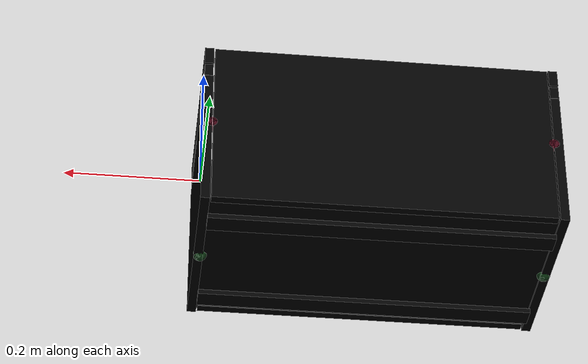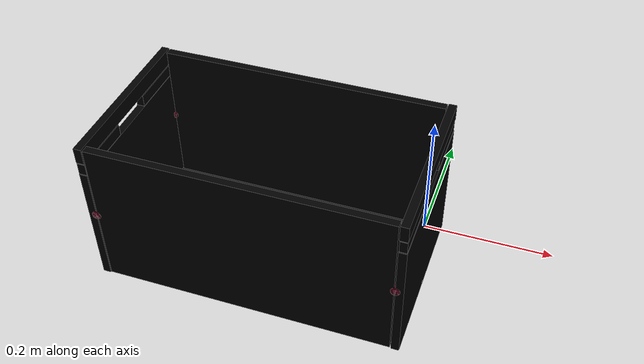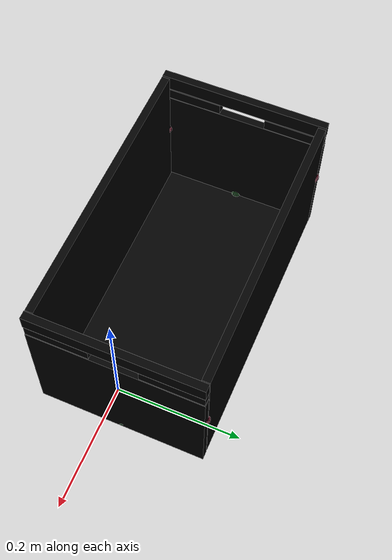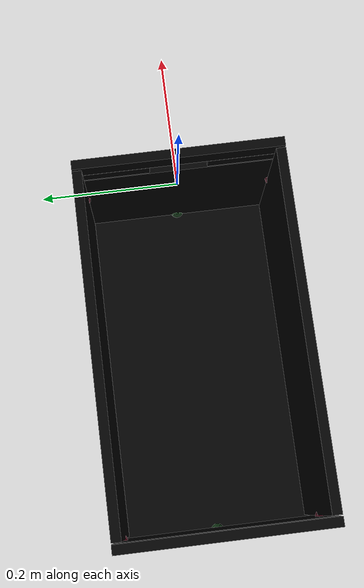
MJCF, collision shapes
<mujoco model="ikea_box">
  <custom>
    <numeric data="0.546077 0.234584 0.006332 0.707105 -0.00609 0.707057 0.006091" name="0_part0_initpos" />
    <numeric data="0.056708 0.243404 0.007289 0.012519 0.0 0.0 -0.999922" name="4_part4_initpos" />
    <numeric data="-0.445141 0.216783 0.006384 0.70606 0.037054 -0.706211 0.037046" name="3_part3_initpos" />
    <numeric data="-0.244854 -0.142557 0.006949 -0.025276 -0.025276 0.706655 0.706655" name="2_part2_initpos" />
    <numeric data="0.384367 -0.146051 0.007052 0.706879 -0.706879 0.017939 -0.017939" name="1_part1_initpos" />
  </custom>
  <asset>
    <mesh file="meshes/box_ivar_0666/0.stl" name="part0" scale="0.0005 0.0005 0.0005" />
    <mesh file="meshes/box_ivar_0666/4.stl" name="part4" scale="0.0005 0.0005 0.0005" />
    <mesh file="meshes/box_ivar_0666/3.stl" name="part3" scale="0.0005 0.0005 0.0005" />
    <mesh file="meshes/box_ivar_0666/2.stl" name="part2" scale="0.0005 0.0005 0.0005" />
    <mesh file="meshes/box_ivar_0666/1.stl" name="part1" scale="0.0005 0.0005 0.0005" />
  </asset>
  <equality>
    <weld active="false" body1="0_part0" body2="1_part1" solimp="1 1 0.5" solref="0.01 0.3" />
    <weld active="false" body1="0_part0" body2="2_part2" solimp="1 1 0.5" solref="0.01 0.3" />
    <weld active="false" body1="3_part3" body2="1_part1" solimp="1 1 0.5" solref="0.01 0.3" />
    <weld active="false" body1="3_part3" body2="2_part2" solimp="1 1 0.5" solref="0.01 0.3" />
    <weld active="false" body1="0_part0" body2="4_part4" solimp="1 1 0.5" solref="0.01 0.3" />
    <weld active="false" body1="3_part3" body2="4_part4" solimp="1 1 0.5" solref="0.01 0.3" />
    <weld active="false" body1="0_part0" body2="4_part4" solimp="1 1 0.5" solref="0.01 0.3" />
    <weld active="false" body1="3_part3" body2="4_part4" solimp="1 1 0.5" solref="0.01 0.3" />
    <weld active="false" body1="0_part0" body2="2_part2" solimp="1 1 0.5" solref="0.01 0.3" />
    <weld active="false" body1="0_part0" body2="1_part1" solimp="1 1 0.5" solref="0.01 0.3" />
    <weld active="false" body1="3_part3" body2="2_part2" solimp="1 1 0.5" solref="0.01 0.3" />
    <weld active="false" body1="3_part3" body2="1_part1" solimp="1 1 0.5" solref="0.01 0.3" />
  </equality>
  <worldbody>
    <body name="0_part0" pos="0.0 1e-10 0.0" quat="1 0 0 0">
      <geom conaffinity="0" contype="0" density="0" mesh="part0" name="0_part0_mesh" pos="0.0 0.0 0.0" rgba="0.82 0.71 0.55 1" type="mesh" />
      <site name="0_part0_horizontal_radius_site" pos="0.0 1e-10 0.0" quat="1 0 0 0" rgba="0 0 0 0" size="0.0005" />
      <site name="0_part0_top_site" pos="0.0 1e-10 0.13492582705" quat="1 0 0 0" rgba="0 0 0 0" size="0.0005" />
      <site name="0_part0_bottom_site" pos="0.0 1e-10 -0.13492582705" quat="1 0 0 0" rgba="0 0 0 0" size="0.0005" />
      <site name="0_part0_corner_site8" pos="-0.00635 0.1461402285 0.13492582705" quat="1 0 0 0" rgba="0 0 0 0" size="0.01" />
      <site name="0_part0_corner_site7" pos="0.00635 0.1461402285 0.13492582705" quat="1 0 0 0" rgba="0 0 0 0" size="0.01" />
      <site name="0_part0_corner_site6" pos="0.00635 -0.14614022825 0.13492582705" quat="1 0 0 0" rgba="0 0 0 0" size="0.01" />
      <site name="0_part0_corner_site5" pos="-0.00635 -0.14614022825 0.13492582705" quat="1 0 0 0" rgba="0 0 0 0" size="0.01" />
      <site name="0_part0_corner_site4" pos="-0.00635 0.1461402285 -0.13492582705" quat="1 0 0 0" rgba="0 0 0 0" size="0.01" />
      <site name="0_part0_corner_site3" pos="0.00635 0.1461402285 -0.13492582705" quat="1 0 0 0" rgba="0 0 0 0" size="0.01" />
      <site name="0_part0_corner_site2" pos="0.00635 -0.14614022825 -0.13492582705" quat="1 0 0 0" rgba="0 0 0 0" size="0.01" />
      <site name="0_part0_corner_site1" pos="-0.00635 -0.14614022825 -0.13492582705" quat="1 0 0 0" rgba="0 0 0 0" size="0.01" />
      <site name="short-long,0,conn_site4" pos="-0.006900000000000001 -0.14 0.0" quat="0.7071067 0 0.7071068 0" rgba="0.9019 0.0980 0.2941 0.3" size="0.01" />
      <site name="short-long,0,conn_site3" pos="-0.006900000000000001 0.14 0.0" quat="0.7071067 0 0.7071068 0" rgba="0.9019 0.0980 0.2941 0.3" size="0.01" />
      <site name="short-bottom,0,conn_site2" pos="-0.0030499999999999998 1e-08 -0.13" quat="0.7071067 0 0.7071068 0" rgba="0.2352 0.7058 0.2941 0.3" size="0.01" />
      <geom density="50" name="noviz_collision_0_part0_0" pos="-0.00031579000000000004 2e-08 -0.025500000000000002" quat="1 0 0 0" rgba="0 0 0 0" size="0.0066657700000000005 0.14614025 0.10875" solref="0.001 1" type="box" />
      <geom density="50" name="noviz_collision_0_part0_1" pos="-0.00031579000000000004 2e-08 0.1205" quat="1 0 0 0" rgba="0 0 0 0" size="0.0066657700000000005 0.14614025 0.01375" solref="0.001 1" type="box" />
      <geom density="50" name="noviz_collision_0_part0_2" pos="-0.00031579000000000004 0.093 0.0945" quat="1 0 0 0" rgba="0 0 0 0" size="0.00603421 0.0525 0.01" solref="0.001 1" type="box" />
      <geom density="50" name="noviz_collision_0_part0_3" pos="-0.00031579000000000004 -0.093 0.0945" quat="1 0 0 0" rgba="0 0 0 0" size="0.00603421 0.0525 0.01" solref="0.001 1" type="box" />
    </body>
    <body name="4_part4" pos="-0.25387612340000004 2.265e-08 -0.13619582725" quat="1 0 0 0">
      <geom conaffinity="0" contype="0" density="0" mesh="part4" name="4_part4_mesh" pos="0.0 0.0 0.0" rgba="0.82 0.71 0.55 1" type="mesh" />
      <site name="4_part4_horizontal_radius_site" pos="0.0 0.0 0.0" quat="1 0 0 0" rgba="0 0 0 0" size="0.0005" />
      <site name="4_part4_top_site" pos="0.0 0.0 0.0076200001000000005" quat="1 0 0 0" rgba="0 0 0 0" size="0.0005" />
      <site name="4_part4_bottom_site" pos="0.0 0.0 -0.0076200001000000005" quat="1 0 0 0" rgba="0 0 0 0" size="0.0005" />
      <site name="4_part4_corner_site8" pos="-0.25387612345 0.1397902069 0.0076200001000000005" quat="1 0 0 0" rgba="0 0 0 0" size="0.01" />
      <site name="4_part4_corner_site7" pos="0.25387612345 0.1397902069 0.0076200001000000005" quat="1 0 0 0" rgba="0 0 0 0" size="0.01" />
      <site name="4_part4_corner_site6" pos="0.25387612345 -0.1397902069 0.0076200001000000005" quat="1 0 0 0" rgba="0 0 0 0" size="0.01" />
      <site name="4_part4_corner_site5" pos="-0.25387612345 -0.1397902069 0.0076200001000000005" quat="1 0 0 0" rgba="0 0 0 0" size="0.01" />
      <site name="4_part4_corner_site4" pos="-0.25387612345 0.1397902069 -0.0076200001000000005" quat="1 0 0 0" rgba="0 0 0 0" size="0.01" />
      <site name="4_part4_corner_site3" pos="0.25387612345 0.1397902069 -0.0076200001000000005" quat="1 0 0 0" rgba="0 0 0 0" size="0.01" />
      <site name="4_part4_corner_site2" pos="0.25387612345 -0.1397902069 -0.0076200001000000005" quat="1 0 0 0" rgba="0 0 0 0" size="0.01" />
      <site name="4_part4_corner_site1" pos="-0.25387612345 -0.1397902069 -0.0076200001000000005" quat="1 0 0 0" rgba="0 0 0 0" size="0.01" />
      <site name="bottom-short,0,conn_site2" pos="0.25082615 -1e-08 0.00619583" quat="0.7071067 0 0.7071068 0" rgba="0.2352 0.7058 0.2941 0.3" size="0.01" />
      <site name="bottom-short,0,conn_site1" pos="-0.25152385 -1e-08 0.00619583" quat="0 0.7071068 0 -0.7071067" rgba="0.2352 0.7058 0.2941 0.3" size="0.01" />
      <geom density="50" name="noviz_collision_4_part4_0" pos="0.0 -5e-09 0.0064458300000000005" quat="1 0 0 0" rgba="0 0 0 0" size="0.25387615 0.1397902 0.00125" solref="0.001 1" type="box" />
      <geom density="50" name="noviz_collision_4_part4_1" pos="0.0 0.09644995 -0.00355417" quat="1 0 0 0" rgba="0 0 0 0" size="0.2475 0.015 0.00375" solref="0.001 1" type="box" />
      <geom density="50" name="noviz_collision_4_part4_2" pos="0.0 -0.09690000000000001 -0.00355417" quat="1 0 0 0" rgba="0 0 0 0" size="0.2475 0.015 0.00375" solref="0.001 1" type="box" />
    </body>
    <body name="3_part3" pos="-0.5077522468000001 1e-10 0.0" quat="1 0 0 0">
      <geom conaffinity="0" contype="0" density="0" mesh="part3" name="3_part3_mesh" pos="0.0 0.0 0.0" rgba="0.82 0.71 0.55 1" type="mesh" />
      <site name="3_part3_horizontal_radius_site" pos="0.0 1e-10 0.0" quat="1 0 0 0" rgba="0 0 0 0" size="0.0005" />
      <site name="3_part3_top_site" pos="0.0 1e-10 0.13492582705" quat="1 0 0 0" rgba="0 0 0 0" size="0.0005" />
      <site name="3_part3_bottom_site" pos="0.0 1e-10 -0.13492582705" quat="1 0 0 0" rgba="0 0 0 0" size="0.0005" />
      <site name="3_part3_corner_site8" pos="-0.0063500061 0.1461402285 0.13492582705" quat="1 0 0 0" rgba="0 0 0 0" size="0.01" />
      <site name="3_part3_corner_site7" pos="0.0063500061 0.1461402285 0.13492582705" quat="1 0 0 0" rgba="0 0 0 0" size="0.01" />
      <site name="3_part3_corner_site6" pos="0.0063500061 -0.14614022825 0.13492582705" quat="1 0 0 0" rgba="0 0 0 0" size="0.01" />
      <site name="3_part3_corner_site5" pos="-0.0063500061 -0.14614022825 0.13492582705" quat="1 0 0 0" rgba="0 0 0 0" size="0.01" />
      <site name="3_part3_corner_site4" pos="-0.0063500061 0.1461402285 -0.13492582705" quat="1 0 0 0" rgba="0 0 0 0" size="0.01" />
      <site name="3_part3_corner_site3" pos="0.0063500061 0.1461402285 -0.13492582705" quat="1 0 0 0" rgba="0 0 0 0" size="0.01" />
      <site name="3_part3_corner_site2" pos="0.0063500061 -0.14614022825 -0.13492582705" quat="1 0 0 0" rgba="0 0 0 0" size="0.01" />
      <site name="3_part3_corner_site1" pos="-0.0063500061 -0.14614022825 -0.13492582705" quat="1 0 0 0" rgba="0 0 0 0" size="0.01" />
      <site name="short-long,0,conn_site2" pos="0.0067522599999999995 -0.14 0.0" quat="0 0.7071068 0 -0.7071067" rgba="0.9019 0.0980 0.2941 0.3" size="0.01" />
      <site name="short-long,0,conn_site1" pos="0.0067522599999999995 0.14 0.0" quat="0 0.7071068 0 -0.7071067" rgba="0.9019 0.0980 0.2941 0.3" size="0.01" />
      <site name="short-bottom,0,conn_site1" pos="0.002352265 1e-08 -0.13" quat="0 0.7071068 0 -0.7071067" rgba="0.2352 0.7058 0.2941 0.3" size="0.01" />
      <geom density="50" name="noviz_collision_3_part3_0" pos="0.000315795 2e-08 -0.025500000000000002" quat="1 0 0 0" rgba="0 0 0 0" size="0.0066657700000000005 0.14614025 0.10875" solref="0.001 1" type="box" />
      <geom density="50" name="noviz_collision_3_part3_1" pos="0.000315795 2e-08 0.1205" quat="1 0 0 0" rgba="0 0 0 0" size="0.0066657700000000005 0.14614025 0.01375" solref="0.001 1" type="box" />
      <geom density="50" name="noviz_collision_3_part3_2" pos="0.000315795 0.093 0.0945" quat="1 0 0 0" rgba="0 0 0 0" size="0.0066657700000000005 0.0525 0.01" solref="0.001 1" type="box" />
      <geom density="50" name="noviz_collision_3_part3_3" pos="0.000315795 -0.093 0.0945" quat="1 0 0 0" rgba="0 0 0 0" size="0.0066657700000000005 0.0525 0.01" solref="0.001 1" type="box" />
    </body>
    <body name="2_part2" pos="-0.25387612515 0.13979021084999999 0.0" quat="1 0 0 0">
      <geom conaffinity="0" contype="0" density="0" mesh="part2" name="2_part2_mesh" pos="0.0 0.0 0.0" rgba="0.82 0.71 0.55 1" type="mesh" />
      <site name="2_part2_horizontal_radius_site" pos="0.0 1e-10 0.0" quat="1 0 0 0" rgba="0 0 0 0" size="0.0005" />
      <site name="2_part2_top_site" pos="0.0 1e-10 0.13492582705" quat="1 0 0 0" rgba="0 0 0 0" size="0.0005" />
      <site name="2_part2_bottom_site" pos="0.0 1e-10 -0.13492582705" quat="1 0 0 0" rgba="0 0 0 0" size="0.0005" />
      <site name="2_part2_corner_site8" pos="-0.25387612915 0.00635001775 0.13492582705" quat="1 0 0 0" rgba="0 0 0 0" size="0.01" />
      <site name="2_part2_corner_site7" pos="0.25387612915 0.00635001775 0.13492582705" quat="1 0 0 0" rgba="0 0 0 0" size="0.01" />
      <site name="2_part2_corner_site6" pos="0.25387612915 -0.00635001755 0.13492582705" quat="1 0 0 0" rgba="0 0 0 0" size="0.01" />
      <site name="2_part2_corner_site5" pos="-0.25387612915 -0.00635001755 0.13492582705" quat="1 0 0 0" rgba="0 0 0 0" size="0.01" />
      <site name="2_part2_corner_site4" pos="-0.25387612915 0.00635001775 -0.13492582705" quat="1 0 0 0" rgba="0 0 0 0" size="0.01" />
      <site name="2_part2_corner_site3" pos="0.25387612915 0.00635001775 -0.13492582705" quat="1 0 0 0" rgba="0 0 0 0" size="0.01" />
      <site name="2_part2_corner_site2" pos="0.25387612915 -0.00635001755 -0.13492582705" quat="1 0 0 0" rgba="0 0 0 0" size="0.01" />
      <site name="2_part2_corner_site1" pos="-0.25387612915 -0.00635001755 -0.13492582705" quat="1 0 0 0" rgba="0 0 0 0" size="0.01" />
      <site name="long-short,0,conn_site3" pos="0.24697615 0.000209795 0.0" quat="0.7071067 0 0.7071068 0" rgba="0.9019 0.0980 0.2941 0.3" size="0.01" />
      <site name="long-short,0,conn_site1" pos="-0.24712385 0.000209795 0.0" quat="0 0.7071068 0 -0.7071067" rgba="0.9019 0.0980 0.2941 0.3" size="0.01" />
      <geom density="50" name="noviz_collision_2_part2_0" pos="0.0 -0.000314515 0.0005" quat="1 0 0 0" rgba="0 0 0 0" size="0.245 0.006664565 0.1325" solref="0.001 1" type="box" />
    </body>
    <body name="1_part1" pos="-0.25387612515 -0.13979020855 0.0" quat="1 0 0 0">
      <geom conaffinity="0" contype="0" density="0" mesh="part1" name="1_part1_mesh" pos="0.0 0.0 0.0" rgba="0.82 0.71 0.55 1" type="mesh" />
      <site name="1_part1_horizontal_radius_site" pos="0.0 0.0 0.0" quat="1 0 0 0" rgba="0 0 0 0" size="0.0005" />
      <site name="1_part1_top_site" pos="0.0 0.0 0.13492582705" quat="1 0 0 0" rgba="0 0 0 0" size="0.0005" />
      <site name="1_part1_bottom_site" pos="0.0 0.0 -0.13492582705" quat="1 0 0 0" rgba="0 0 0 0" size="0.0005" />
      <site name="1_part1_corner_site8" pos="-0.25387612915 0.00635001995 0.13492582705" quat="1 0 0 0" rgba="0 0 0 0" size="0.01" />
      <site name="1_part1_corner_site7" pos="0.25387612915 0.00635001995 0.13492582705" quat="1 0 0 0" rgba="0 0 0 0" size="0.01" />
      <site name="1_part1_corner_site6" pos="0.25387612915 -0.00635001995 0.13492582705" quat="1 0 0 0" rgba="0 0 0 0" size="0.01" />
      <site name="1_part1_corner_site5" pos="-0.25387612915 -0.00635001995 0.13492582705" quat="1 0 0 0" rgba="0 0 0 0" size="0.01" />
      <site name="1_part1_corner_site4" pos="-0.25387612915 0.00635001995 -0.13492582705" quat="1 0 0 0" rgba="0 0 0 0" size="0.01" />
      <site name="1_part1_corner_site3" pos="0.25387612915 0.00635001995 -0.13492582705" quat="1 0 0 0" rgba="0 0 0 0" size="0.01" />
      <site name="1_part1_corner_site2" pos="0.25387612915 -0.00635001995 -0.13492582705" quat="1 0 0 0" rgba="0 0 0 0" size="0.01" />
      <site name="1_part1_corner_site1" pos="-0.25387612915 -0.00635001995 -0.13492582705" quat="1 0 0 0" rgba="0 0 0 0" size="0.01" />
      <site name="long-short,0,conn_site4" pos="0.24697615 -0.000209795 0.0" quat="0.7071067 0 0.7071068 0" rgba="0.9019 0.0980 0.2941 0.3" size="0.01" />
      <site name="long-short,0,conn_site2" pos="-0.24712385 -0.000209795 0.0" quat="0 0.7071068 0 -0.7071067" rgba="0.9019 0.0980 0.2941 0.3" size="0.01" />
      <geom density="50" name="noviz_collision_1_part1_0" pos="0.0 0.000314545 0.0005" quat="1 0 0 0" rgba="0 0 0 0" size="0.245 0.006664565 0.1325" solref="0.001 1" type="box" />
    </body>
  </worldbody>
  <actuator />
  <sensor />
  <contact />
  <default />
</mujoco>
